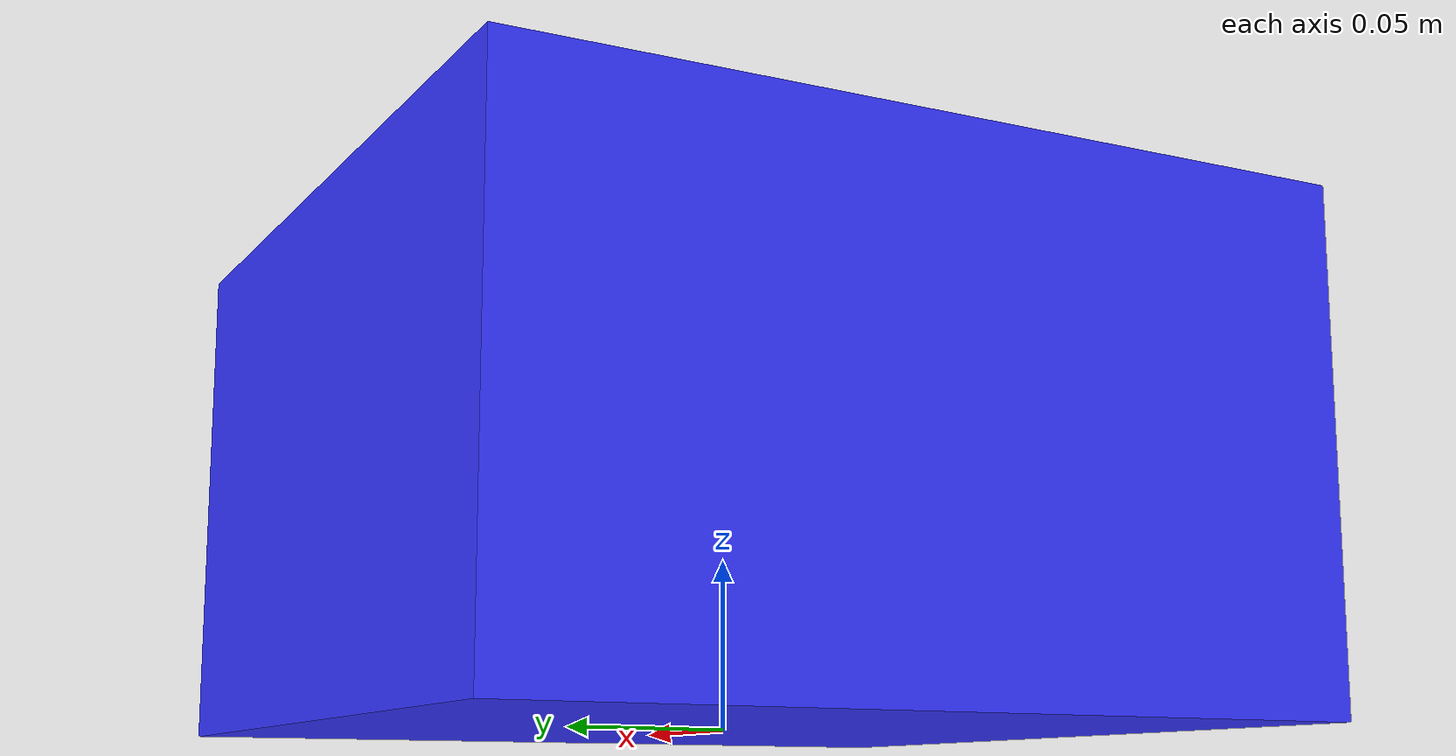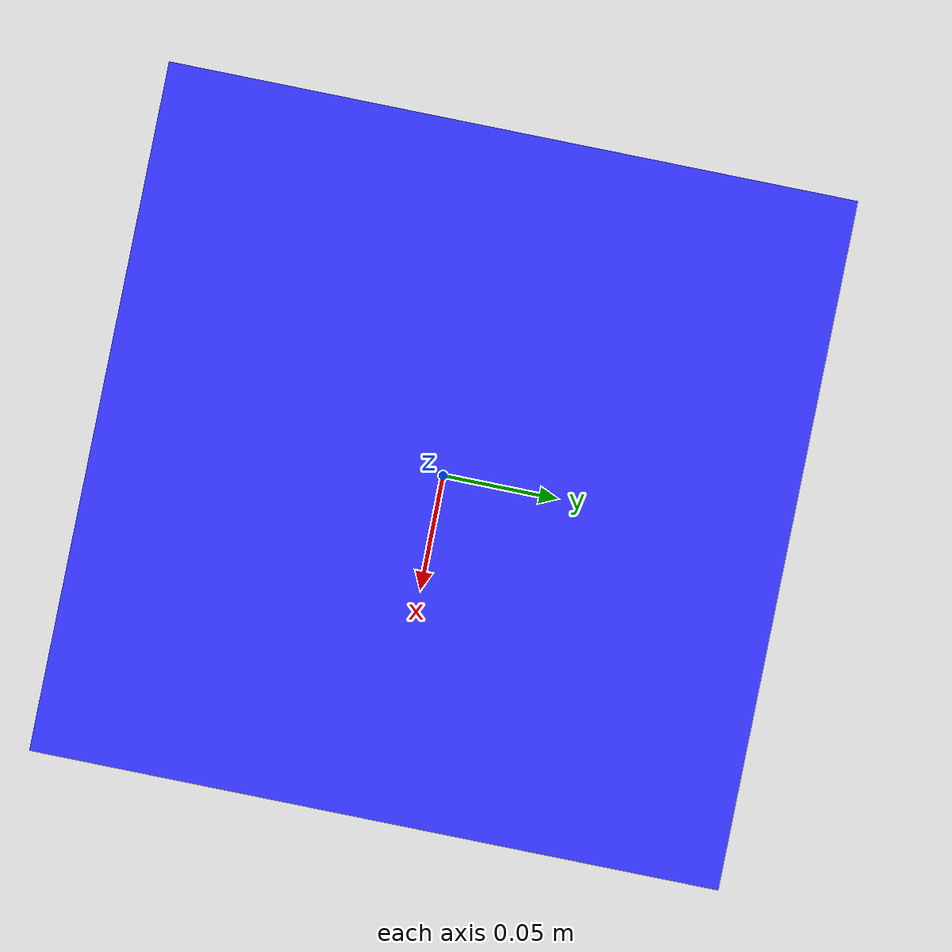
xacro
<?xml version="1.0"?>
<robot name="robot" xmlns:xacro="http://www.ros.org/wiki/xacro">

    <link name="base_footprint"></link>

    <joint name="robot_footprint_joint" type="fixed">
        <origin xyz="0 0 0" rpy="0 0 0" />
        <parent link="base_footprint"/>
        <child link="base_link" />
    </joint>

    <link name="base_link"></link>

    <joint name="chassis_joint" type="fixed">
        <parent link="base_link"/>
        <child link="chassis"/>
        <origin xyz="0 0 0"/>
    </joint>

    <link name="chassis">
        <visual>
            <origin xyz="0 0 0.075" rpy="0 0 0"/>
            <geometry>
                <box size="0.25 0.25 0.15"/>
            </geometry>
            <material name="blue">
                <color rgba="0.2 0.2 1 1"/>
            </material>
        </visual>
    </link>

</robot>
